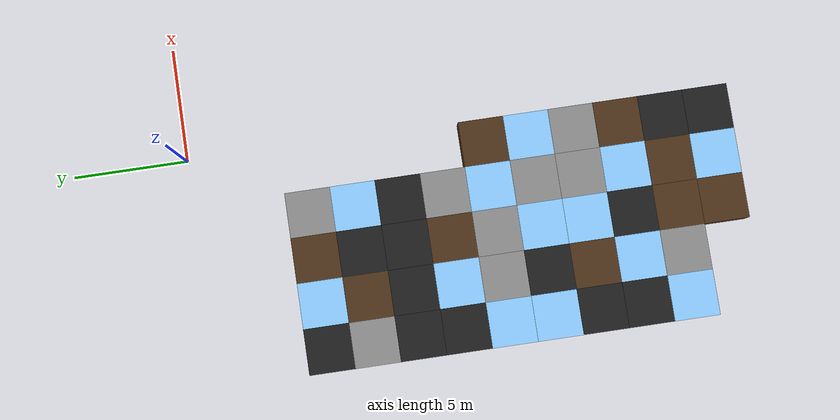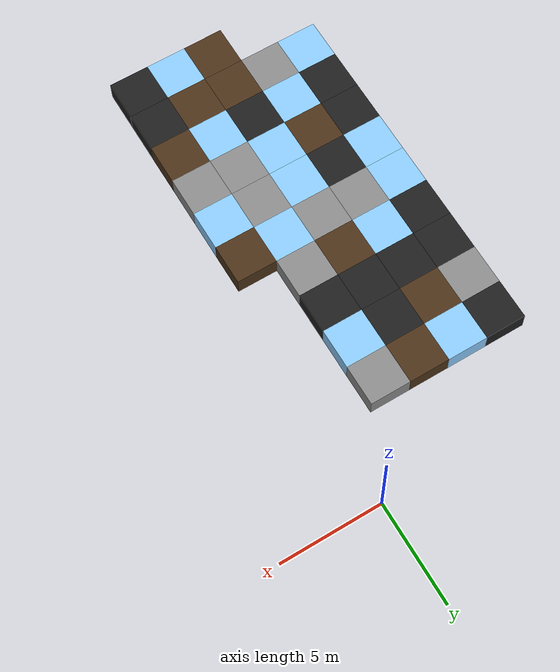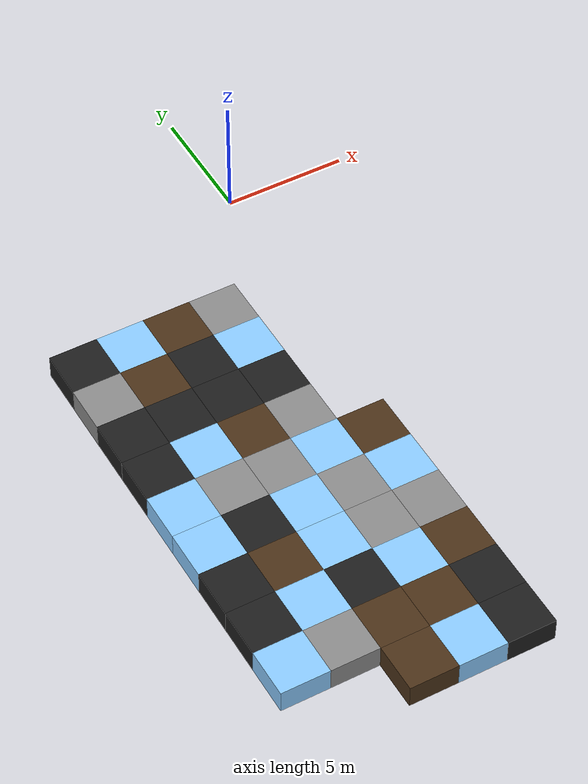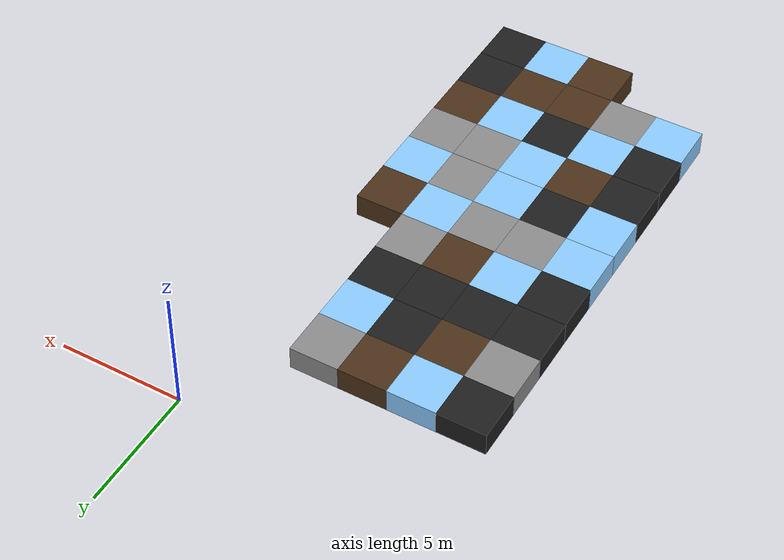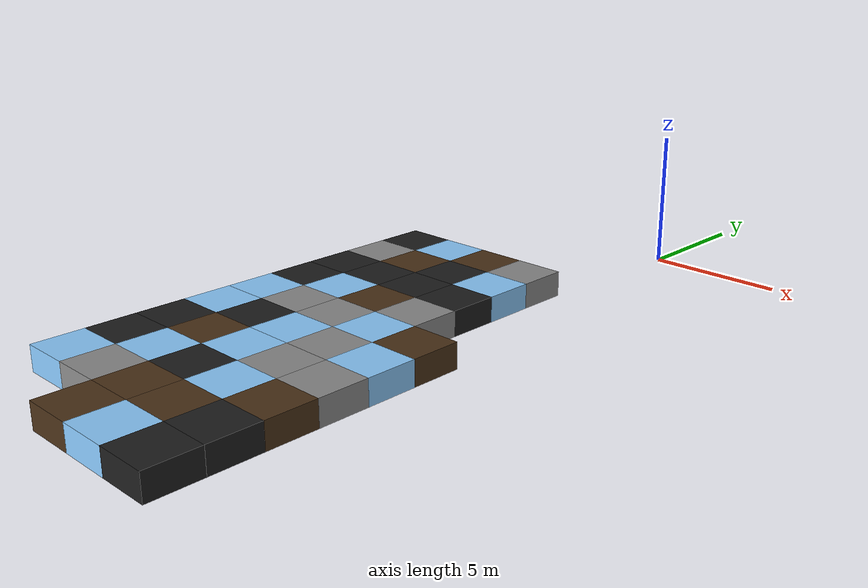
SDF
<sdf version="1.5">
 <world name="squares_example">
  <model name="tile_13_4">
   <static>true</static>
   <pose>-5.000 -23.000 -0.500 0 0 0</pose>
   <link name="link">
    <collision name="col">
     <geometry><box><size>2.0 2.0 1.0</size></box></geometry>
     <surface>
      <friction>
       <ode><mu>0.6</mu><mu2>0.4</mu2><fdir1>1 0 0</fdir1><slip1>0.08</slip1><slip2>0.08</slip2></ode>
       <torsional>
        <coefficient>0.03</coefficient>
        <use_patch_radius>false</use_patch_radius>
        <surface_radius>0.12</surface_radius>
        <ode><slip>0.0</slip></ode>
       </torsional>
      </friction>
      <bounce><restitution_coefficient>0.0</restitution_coefficient><threshold>0.1</threshold></bounce>
      <contact>
       <ode><kp>1000000.0</kp><kd>10000.0</kd><max_vel>0.01</max_vel><min_depth>0.0</min_depth></ode>
      </contact>
     </surface>
    </collision>
    <visual name="visual">
     <geometry><box><size>2.0 2.0 1.0</size></box></geometry>
     <material>
      <diffuse>0.30 0.20 0.10 1</diffuse>
      <ambient>0 0 0 0</ambient>
      <specular>0 0 0 1</specular>
      <emissive>0 0 0 1</emissive>
     </material>
    </visual>
   </link>
  </model>
  <model name="tile_14_4">
   <static>true</static>
   <pose>-3.000 -23.000 -0.500 0 0 0</pose>
   <link name="link">
    <collision name="col">
     <geometry><box><size>2.0 2.0 1.0</size></box></geometry>
     <surface>
      <friction>
       <ode><mu>0.03</mu><mu2>0.02</mu2><fdir1>1 0 0</fdir1><slip1>0.03</slip1><slip2>0.03</slip2></ode>
       <torsional>
        <coefficient>0.005</coefficient>
        <use_patch_radius>false</use_patch_radius>
        <surface_radius>0.12</surface_radius>
        <ode><slip>0.01</slip></ode>
       </torsional>
      </friction>
      <bounce><restitution_coefficient>0.0</restitution_coefficient><threshold>0.1</threshold></bounce>
      <contact>
       <ode><kp>10000000.0</kp><kd>1000.0</kd><max_vel>0.01</max_vel><min_depth>0.0</min_depth></ode>
      </contact>
     </surface>
    </collision>
    <visual name="visual">
     <geometry><box><size>2.0 2.0 1.0</size></box></geometry>
     <material>
      <diffuse>0.55 0.80 1.00 1</diffuse>
      <ambient>0 0 0 0</ambient>
      <specular>0 0 0 1</specular>
      <emissive>0 0 0 1</emissive>
     </material>
    </visual>
   </link>
  </model>
  <model name="tile_15_4">
   <static>true</static>
   <pose>-1.000 -23.000 -0.500 0 0 0</pose>
   <link name="link">
    <collision name="col">
     <geometry><box><size>2.0 2.0 1.0</size></box></geometry>
     <surface>
      <friction>
       <ode><mu>0.4</mu><mu2>0.15</mu2><fdir1>1 0 0</fdir1><slip1>0.0</slip1><slip2>0.0</slip2></ode>
       <torsional>
        <coefficient>0.03</coefficient>
        <use_patch_radius>false</use_patch_radius>
        <surface_radius>0.12</surface_radius>
        <ode><slip>0.0</slip></ode>
       </torsional>
      </friction>
      <bounce><restitution_coefficient>0.0</restitution_coefficient><threshold>0.1</threshold></bounce>
      <contact>
       <ode><kp>1000000000.0</kp><kd>1000000.0</kd><max_vel>0.01</max_vel><min_depth>0.0</min_depth></ode>
      </contact>
     </surface>
    </collision>
    <visual name="visual">
     <geometry><box><size>2.0 2.0 1.0</size></box></geometry>
     <material>
      <diffuse>0.12 0.12 0.12 1</diffuse>
      <ambient>0 0 0 0</ambient>
      <specular>0 0 0 1</specular>
      <emissive>0 0 0 1</emissive>
     </material>
    </visual>
   </link>
  </model>
  <model name="tile_11_5">
   <static>true</static>
   <pose>-9.000 -21.000 -0.500 0 0 0</pose>
   <link name="link">
    <collision name="col">
     <geometry><box><size>2.0 2.0 1.0</size></box></geometry>
     <surface>
      <friction>
       <ode><mu>0.03</mu><mu2>0.02</mu2><fdir1>1 0 0</fdir1><slip1>0.03</slip1><slip2>0.03</slip2></ode>
       <torsional>
        <coefficient>0.005</coefficient>
        <use_patch_radius>false</use_patch_radius>
        <surface_radius>0.12</surface_radius>
        <ode><slip>0.01</slip></ode>
       </torsional>
      </friction>
      <bounce><restitution_coefficient>0.0</restitution_coefficient><threshold>0.1</threshold></bounce>
      <contact>
       <ode><kp>10000000.0</kp><kd>1000.0</kd><max_vel>0.01</max_vel><min_depth>0.0</min_depth></ode>
      </contact>
     </surface>
    </collision>
    <visual name="visual">
     <geometry><box><size>2.0 2.0 1.0</size></box></geometry>
     <material>
      <diffuse>0.55 0.80 1.00 1</diffuse>
      <ambient>0 0 0 0</ambient>
      <specular>0 0 0 1</specular>
      <emissive>0 0 0 1</emissive>
     </material>
    </visual>
   </link>
  </model>
  <model name="tile_12_5">
   <static>true</static>
   <pose>-7.000 -21.000 -0.500 0 0 0</pose>
   <link name="link">
    <collision name="col">
     <geometry><box><size>2.0 2.0 1.0</size></box></geometry>
     <surface>
      <friction>
       <ode><mu>0.8</mu><mu2>0.3</mu2><fdir1>1 0 0</fdir1><slip1>0.0</slip1><slip2>0.0</slip2></ode>
       <torsional>
        <coefficient>0.03</coefficient>
        <use_patch_radius>false</use_patch_radius>
        <surface_radius>0.12</surface_radius>
        <ode><slip>0.0</slip></ode>
       </torsional>
      </friction>
      <bounce><restitution_coefficient>0.0</restitution_coefficient><threshold>0.1</threshold></bounce>
      <contact>
       <ode><kp>10000000000.0</kp><kd>10000000.0</kd><max_vel>0.01</max_vel><min_depth>0.0</min_depth></ode>
      </contact>
     </surface>
    </collision>
    <visual name="visual">
     <geometry><box><size>2.0 2.0 1.0</size></box></geometry>
     <material>
      <diffuse>0.55 0.55 0.55 1</diffuse>
      <ambient>0 0 0 0</ambient>
      <specular>0 0 0 1</specular>
      <emissive>0 0 0 1</emissive>
     </material>
    </visual>
   </link>
  </model>
  <model name="tile_13_5">
   <static>true</static>
   <pose>-5.000 -21.000 -0.500 0 0 0</pose>
   <link name="link">
    <collision name="col">
     <geometry><box><size>2.0 2.0 1.0</size></box></geometry>
     <surface>
      <friction>
       <ode><mu>0.6</mu><mu2>0.4</mu2><fdir1>1 0 0</fdir1><slip1>0.08</slip1><slip2>0.08</slip2></ode>
       <torsional>
        <coefficient>0.03</coefficient>
        <use_patch_radius>false</use_patch_radius>
        <surface_radius>0.12</surface_radius>
        <ode><slip>0.0</slip></ode>
       </torsional>
      </friction>
      <bounce><restitution_coefficient>0.0</restitution_coefficient><threshold>0.1</threshold></bounce>
      <contact>
       <ode><kp>1000000.0</kp><kd>10000.0</kd><max_vel>0.01</max_vel><min_depth>0.0</min_depth></ode>
      </contact>
     </surface>
    </collision>
    <visual name="visual">
     <geometry><box><size>2.0 2.0 1.0</size></box></geometry>
     <material>
      <diffuse>0.30 0.20 0.10 1</diffuse>
      <ambient>0 0 0 0</ambient>
      <specular>0 0 0 1</specular>
      <emissive>0 0 0 1</emissive>
     </material>
    </visual>
   </link>
  </model>
  <model name="tile_14_5">
   <static>true</static>
   <pose>-3.000 -21.000 -0.500 0 0 0</pose>
   <link name="link">
    <collision name="col">
     <geometry><box><size>2.0 2.0 1.0</size></box></geometry>
     <surface>
      <friction>
       <ode><mu>0.6</mu><mu2>0.4</mu2><fdir1>1 0 0</fdir1><slip1>0.08</slip1><slip2>0.08</slip2></ode>
       <torsional>
        <coefficient>0.03</coefficient>
        <use_patch_radius>false</use_patch_radius>
        <surface_radius>0.12</surface_radius>
        <ode><slip>0.0</slip></ode>
       </torsional>
      </friction>
      <bounce><restitution_coefficient>0.0</restitution_coefficient><threshold>0.1</threshold></bounce>
      <contact>
       <ode><kp>1000000.0</kp><kd>10000.0</kd><max_vel>0.01</max_vel><min_depth>0.0</min_depth></ode>
      </contact>
     </surface>
    </collision>
    <visual name="visual">
     <geometry><box><size>2.0 2.0 1.0</size></box></geometry>
     <material>
      <diffuse>0.30 0.20 0.10 1</diffuse>
      <ambient>0 0 0 0</ambient>
      <specular>0 0 0 1</specular>
      <emissive>0 0 0 1</emissive>
     </material>
    </visual>
   </link>
  </model>
  <model name="tile_15_5">
   <static>true</static>
   <pose>-1.000 -21.000 -0.500 0 0 0</pose>
   <link name="link">
    <collision name="col">
     <geometry><box><size>2.0 2.0 1.0</size></box></geometry>
     <surface>
      <friction>
       <ode><mu>0.4</mu><mu2>0.15</mu2><fdir1>1 0 0</fdir1><slip1>0.0</slip1><slip2>0.0</slip2></ode>
       <torsional>
        <coefficient>0.03</coefficient>
        <use_patch_radius>false</use_patch_radius>
        <surface_radius>0.12</surface_radius>
        <ode><slip>0.0</slip></ode>
       </torsional>
      </friction>
      <bounce><restitution_coefficient>0.0</restitution_coefficient><threshold>0.1</threshold></bounce>
      <contact>
       <ode><kp>1000000000.0</kp><kd>1000000.0</kd><max_vel>0.01</max_vel><min_depth>0.0</min_depth></ode>
      </contact>
     </surface>
    </collision>
    <visual name="visual">
     <geometry><box><size>2.0 2.0 1.0</size></box></geometry>
     <material>
      <diffuse>0.12 0.12 0.12 1</diffuse>
      <ambient>0 0 0 0</ambient>
      <specular>0 0 0 1</specular>
      <emissive>0 0 0 1</emissive>
     </material>
    </visual>
   </link>
  </model>
  <model name="tile_11_6">
   <static>true</static>
   <pose>-9.000 -19.000 -0.500 0 0 0</pose>
   <link name="link">
    <collision name="col">
     <geometry><box><size>2.0 2.0 1.0</size></box></geometry>
     <surface>
      <friction>
       <ode><mu>0.4</mu><mu2>0.15</mu2><fdir1>1 0 0</fdir1><slip1>0.0</slip1><slip2>0.0</slip2></ode>
       <torsional>
        <coefficient>0.03</coefficient>
        <use_patch_radius>false</use_patch_radius>
        <surface_radius>0.12</surface_radius>
        <ode><slip>0.0</slip></ode>
       </torsional>
      </friction>
      <bounce><restitution_coefficient>0.0</restitution_coefficient><threshold>0.1</threshold></bounce>
      <contact>
       <ode><kp>1000000000.0</kp><kd>1000000.0</kd><max_vel>0.01</max_vel><min_depth>0.0</min_depth></ode>
      </contact>
     </surface>
    </collision>
    <visual name="visual">
     <geometry><box><size>2.0 2.0 1.0</size></box></geometry>
     <material>
      <diffuse>0.12 0.12 0.12 1</diffuse>
      <ambient>0 0 0 0</ambient>
      <specular>0 0 0 1</specular>
      <emissive>0 0 0 1</emissive>
     </material>
    </visual>
   </link>
  </model>
  <model name="tile_12_6">
   <static>true</static>
   <pose>-7.000 -19.000 -0.500 0 0 0</pose>
   <link name="link">
    <collision name="col">
     <geometry><box><size>2.0 2.0 1.0</size></box></geometry>
     <surface>
      <friction>
       <ode><mu>0.03</mu><mu2>0.02</mu2><fdir1>1 0 0</fdir1><slip1>0.03</slip1><slip2>0.03</slip2></ode>
       <torsional>
        <coefficient>0.005</coefficient>
        <use_patch_radius>false</use_patch_radius>
        <surface_radius>0.12</surface_radius>
        <ode><slip>0.01</slip></ode>
       </torsional>
      </friction>
      <bounce><restitution_coefficient>0.0</restitution_coefficient><threshold>0.1</threshold></bounce>
      <contact>
       <ode><kp>10000000.0</kp><kd>1000.0</kd><max_vel>0.01</max_vel><min_depth>0.0</min_depth></ode>
      </contact>
     </surface>
    </collision>
    <visual name="visual">
     <geometry><box><size>2.0 2.0 1.0</size></box></geometry>
     <material>
      <diffuse>0.55 0.80 1.00 1</diffuse>
      <ambient>0 0 0 0</ambient>
      <specular>0 0 0 1</specular>
      <emissive>0 0 0 1</emissive>
     </material>
    </visual>
   </link>
  </model>
  <model name="tile_13_6">
   <static>true</static>
   <pose>-5.000 -19.000 -0.500 0 0 0</pose>
   <link name="link">
    <collision name="col">
     <geometry><box><size>2.0 2.0 1.0</size></box></geometry>
     <surface>
      <friction>
       <ode><mu>0.4</mu><mu2>0.15</mu2><fdir1>1 0 0</fdir1><slip1>0.0</slip1><slip2>0.0</slip2></ode>
       <torsional>
        <coefficient>0.03</coefficient>
        <use_patch_radius>false</use_patch_radius>
        <surface_radius>0.12</surface_radius>
        <ode><slip>0.0</slip></ode>
       </torsional>
      </friction>
      <bounce><restitution_coefficient>0.0</restitution_coefficient><threshold>0.1</threshold></bounce>
      <contact>
       <ode><kp>1000000000.0</kp><kd>1000000.0</kd><max_vel>0.01</max_vel><min_depth>0.0</min_depth></ode>
      </contact>
     </surface>
    </collision>
    <visual name="visual">
     <geometry><box><size>2.0 2.0 1.0</size></box></geometry>
     <material>
      <diffuse>0.12 0.12 0.12 1</diffuse>
      <ambient>0 0 0 0</ambient>
      <specular>0 0 0 1</specular>
      <emissive>0 0 0 1</emissive>
     </material>
    </visual>
   </link>
  </model>
  <model name="tile_14_6">
   <static>true</static>
   <pose>-3.000 -19.000 -0.500 0 0 0</pose>
   <link name="link">
    <collision name="col">
     <geometry><box><size>2.0 2.0 1.0</size></box></geometry>
     <surface>
      <friction>
       <ode><mu>0.03</mu><mu2>0.02</mu2><fdir1>1 0 0</fdir1><slip1>0.03</slip1><slip2>0.03</slip2></ode>
       <torsional>
        <coefficient>0.005</coefficient>
        <use_patch_radius>false</use_patch_radius>
        <surface_radius>0.12</surface_radius>
        <ode><slip>0.01</slip></ode>
       </torsional>
      </friction>
      <bounce><restitution_coefficient>0.0</restitution_coefficient><threshold>0.1</threshold></bounce>
      <contact>
       <ode><kp>10000000.0</kp><kd>1000.0</kd><max_vel>0.01</max_vel><min_depth>0.0</min_depth></ode>
      </contact>
     </surface>
    </collision>
    <visual name="visual">
     <geometry><box><size>2.0 2.0 1.0</size></box></geometry>
     <material>
      <diffuse>0.55 0.80 1.00 1</diffuse>
      <ambient>0 0 0 0</ambient>
      <specular>0 0 0 1</specular>
      <emissive>0 0 0 1</emissive>
     </material>
    </visual>
   </link>
  </model>
  <model name="tile_15_6">
   <static>true</static>
   <pose>-1.000 -19.000 -0.500 0 0 0</pose>
   <link name="link">
    <collision name="col">
     <geometry><box><size>2.0 2.0 1.0</size></box></geometry>
     <surface>
      <friction>
       <ode><mu>0.6</mu><mu2>0.4</mu2><fdir1>1 0 0</fdir1><slip1>0.08</slip1><slip2>0.08</slip2></ode>
       <torsional>
        <coefficient>0.03</coefficient>
        <use_patch_radius>false</use_patch_radius>
        <surface_radius>0.12</surface_radius>
        <ode><slip>0.0</slip></ode>
       </torsional>
      </friction>
      <bounce><restitution_coefficient>0.0</restitution_coefficient><threshold>0.1</threshold></bounce>
      <contact>
       <ode><kp>1000000.0</kp><kd>10000.0</kd><max_vel>0.01</max_vel><min_depth>0.0</min_depth></ode>
      </contact>
     </surface>
    </collision>
    <visual name="visual">
     <geometry><box><size>2.0 2.0 1.0</size></box></geometry>
     <material>
      <diffuse>0.30 0.20 0.10 1</diffuse>
      <ambient>0 0 0 0</ambient>
      <specular>0 0 0 1</specular>
      <emissive>0 0 0 1</emissive>
     </material>
    </visual>
   </link>
  </model>
  <model name="tile_11_7">
   <static>true</static>
   <pose>-9.000 -17.000 -0.500 0 0 0</pose>
   <link name="link">
    <collision name="col">
     <geometry><box><size>2.0 2.0 1.0</size></box></geometry>
     <surface>
      <friction>
       <ode><mu>0.4</mu><mu2>0.15</mu2><fdir1>1 0 0</fdir1><slip1>0.0</slip1><slip2>0.0</slip2></ode>
       <torsional>
        <coefficient>0.03</coefficient>
        <use_patch_radius>false</use_patch_radius>
        <surface_radius>0.12</surface_radius>
        <ode><slip>0.0</slip></ode>
       </torsional>
      </friction>
      <bounce><restitution_coefficient>0.0</restitution_coefficient><threshold>0.1</threshold></bounce>
      <contact>
       <ode><kp>1000000000.0</kp><kd>1000000.0</kd><max_vel>0.01</max_vel><min_depth>0.0</min_depth></ode>
      </contact>
     </surface>
    </collision>
    <visual name="visual">
     <geometry><box><size>2.0 2.0 1.0</size></box></geometry>
     <material>
      <diffuse>0.12 0.12 0.12 1</diffuse>
      <ambient>0 0 0 0</ambient>
      <specular>0 0 0 1</specular>
      <emissive>0 0 0 1</emissive>
     </material>
    </visual>
   </link>
  </model>
  <model name="tile_12_7">
   <static>true</static>
   <pose>-7.000 -17.000 -0.500 0 0 0</pose>
   <link name="link">
    <collision name="col">
     <geometry><box><size>2.0 2.0 1.0</size></box></geometry>
     <surface>
      <friction>
       <ode><mu>0.6</mu><mu2>0.4</mu2><fdir1>1 0 0</fdir1><slip1>0.08</slip1><slip2>0.08</slip2></ode>
       <torsional>
        <coefficient>0.03</coefficient>
        <use_patch_radius>false</use_patch_radius>
        <surface_radius>0.12</surface_radius>
        <ode><slip>0.0</slip></ode>
       </torsional>
      </friction>
      <bounce><restitution_coefficient>0.0</restitution_coefficient><threshold>0.1</threshold></bounce>
      <contact>
       <ode><kp>1000000.0</kp><kd>10000.0</kd><max_vel>0.01</max_vel><min_depth>0.0</min_depth></ode>
      </contact>
     </surface>
    </collision>
    <visual name="visual">
     <geometry><box><size>2.0 2.0 1.0</size></box></geometry>
     <material>
      <diffuse>0.30 0.20 0.10 1</diffuse>
      <ambient>0 0 0 0</ambient>
      <specular>0 0 0 1</specular>
      <emissive>0 0 0 1</emissive>
     </material>
    </visual>
   </link>
  </model>
  <model name="tile_13_7">
   <static>true</static>
   <pose>-5.000 -17.000 -0.500 0 0 0</pose>
   <link name="link">
    <collision name="col">
     <geometry><box><size>2.0 2.0 1.0</size></box></geometry>
     <surface>
      <friction>
       <ode><mu>0.03</mu><mu2>0.02</mu2><fdir1>1 0 0</fdir1><slip1>0.03</slip1><slip2>0.03</slip2></ode>
       <torsional>
        <coefficient>0.005</coefficient>
        <use_patch_radius>false</use_patch_radius>
        <surface_radius>0.12</surface_radius>
        <ode><slip>0.01</slip></ode>
       </torsional>
      </friction>
      <bounce><restitution_coefficient>0.0</restitution_coefficient><threshold>0.1</threshold></bounce>
      <contact>
       <ode><kp>10000000.0</kp><kd>1000.0</kd><max_vel>0.01</max_vel><min_depth>0.0</min_depth></ode>
      </contact>
     </surface>
    </collision>
    <visual name="visual">
     <geometry><box><size>2.0 2.0 1.0</size></box></geometry>
     <material>
      <diffuse>0.55 0.80 1.00 1</diffuse>
      <ambient>0 0 0 0</ambient>
      <specular>0 0 0 1</specular>
      <emissive>0 0 0 1</emissive>
     </material>
    </visual>
   </link>
  </model>
  <model name="tile_14_7">
   <static>true</static>
   <pose>-3.000 -17.000 -0.500 0 0 0</pose>
   <link name="link">
    <collision name="col">
     <geometry><box><size>2.0 2.0 1.0</size></box></geometry>
     <surface>
      <friction>
       <ode><mu>0.8</mu><mu2>0.3</mu2><fdir1>1 0 0</fdir1><slip1>0.0</slip1><slip2>0.0</slip2></ode>
       <torsional>
        <coefficient>0.03</coefficient>
        <use_patch_radius>false</use_patch_radius>
        <surface_radius>0.12</surface_radius>
        <ode><slip>0.0</slip></ode>
       </torsional>
      </friction>
      <bounce><restitution_coefficient>0.0</restitution_coefficient><threshold>0.1</threshold></bounce>
      <contact>
       <ode><kp>10000000000.0</kp><kd>10000000.0</kd><max_vel>0.01</max_vel><min_depth>0.0</min_depth></ode>
      </contact>
     </surface>
    </collision>
    <visual name="visual">
     <geometry><box><size>2.0 2.0 1.0</size></box></geometry>
     <material>
      <diffuse>0.55 0.55 0.55 1</diffuse>
      <ambient>0 0 0 0</ambient>
      <specular>0 0 0 1</specular>
      <emissive>0 0 0 1</emissive>
     </material>
    </visual>
   </link>
  </model>
  <model name="tile_15_7">
   <static>true</static>
   <pose>-1.000 -17.000 -0.500 0 0 0</pose>
   <link name="link">
    <collision name="col">
     <geometry><box><size>2.0 2.0 1.0</size></box></geometry>
     <surface>
      <friction>
       <ode><mu>0.8</mu><mu2>0.3</mu2><fdir1>1 0 0</fdir1><slip1>0.0</slip1><slip2>0.0</slip2></ode>
       <torsional>
        <coefficient>0.03</coefficient>
        <use_patch_radius>false</use_patch_radius>
        <surface_radius>0.12</surface_radius>
        <ode><slip>0.0</slip></ode>
       </torsional>
      </friction>
      <bounce><restitution_coefficient>0.0</restitution_coefficient><threshold>0.1</threshold></bounce>
      <contact>
       <ode><kp>10000000000.0</kp><kd>10000000.0</kd><max_vel>0.01</max_vel><min_depth>0.0</min_depth></ode>
      </contact>
     </surface>
    </collision>
    <visual name="visual">
     <geometry><box><size>2.0 2.0 1.0</size></box></geometry>
     <material>
      <diffuse>0.55 0.55 0.55 1</diffuse>
      <ambient>0 0 0 0</ambient>
      <specular>0 0 0 1</specular>
      <emissive>0 0 0 1</emissive>
     </material>
    </visual>
   </link>
  </model>
  <model name="tile_11_8">
   <static>true</static>
   <pose>-9.000 -15.000 -0.500 0 0 0</pose>
   <link name="link">
    <collision name="col">
     <geometry><box><size>2.0 2.0 1.0</size></box></geometry>
     <surface>
      <friction>
       <ode><mu>0.03</mu><mu2>0.02</mu2><fdir1>1 0 0</fdir1><slip1>0.03</slip1><slip2>0.03</slip2></ode>
       <torsional>
        <coefficient>0.005</coefficient>
        <use_patch_radius>false</use_patch_radius>
        <surface_radius>0.12</surface_radius>
        <ode><slip>0.01</slip></ode>
       </torsional>
      </friction>
      <bounce><restitution_coefficient>0.0</restitution_coefficient><threshold>0.1</threshold></bounce>
      <contact>
       <ode><kp>10000000.0</kp><kd>1000.0</kd><max_vel>0.01</max_vel><min_depth>0.0</min_depth></ode>
      </contact>
     </surface>
    </collision>
    <visual name="visual">
     <geometry><box><size>2.0 2.0 1.0</size></box></geometry>
     <material>
      <diffuse>0.55 0.80 1.00 1</diffuse>
      <ambient>0 0 0 0</ambient>
      <specular>0 0 0 1</specular>
      <emissive>0 0 0 1</emissive>
     </material>
    </visual>
   </link>
  </model>
  <model name="tile_12_8">
   <static>true</static>
   <pose>-7.000 -15.000 -0.500 0 0 0</pose>
   <link name="link">
    <collision name="col">
     <geometry><box><size>2.0 2.0 1.0</size></box></geometry>
     <surface>
      <friction>
       <ode><mu>0.4</mu><mu2>0.15</mu2><fdir1>1 0 0</fdir1><slip1>0.0</slip1><slip2>0.0</slip2></ode>
       <torsional>
        <coefficient>0.03</coefficient>
        <use_patch_radius>false</use_patch_radius>
        <surface_radius>0.12</surface_radius>
        <ode><slip>0.0</slip></ode>
       </torsional>
      </friction>
      <bounce><restitution_coefficient>0.0</restitution_coefficient><threshold>0.1</threshold></bounce>
      <contact>
       <ode><kp>1000000000.0</kp><kd>1000000.0</kd><max_vel>0.01</max_vel><min_depth>0.0</min_depth></ode>
      </contact>
     </surface>
    </collision>
    <visual name="visual">
     <geometry><box><size>2.0 2.0 1.0</size></box></geometry>
     <material>
      <diffuse>0.12 0.12 0.12 1</diffuse>
      <ambient>0 0 0 0</ambient>
      <specular>0 0 0 1</specular>
      <emissive>0 0 0 1</emissive>
     </material>
    </visual>
   </link>
  </model>
  <model name="tile_13_8">
   <static>true</static>
   <pose>-5.000 -15.000 -0.500 0 0 0</pose>
   <link name="link">
    <collision name="col">
     <geometry><box><size>2.0 2.0 1.0</size></box></geometry>
     <surface>
      <friction>
       <ode><mu>0.03</mu><mu2>0.02</mu2><fdir1>1 0 0</fdir1><slip1>0.03</slip1><slip2>0.03</slip2></ode>
       <torsional>
        <coefficient>0.005</coefficient>
        <use_patch_radius>false</use_patch_radius>
        <surface_radius>0.12</surface_radius>
        <ode><slip>0.01</slip></ode>
       </torsional>
      </friction>
      <bounce><restitution_coefficient>0.0</restitution_coefficient><threshold>0.1</threshold></bounce>
      <contact>
       <ode><kp>10000000.0</kp><kd>1000.0</kd><max_vel>0.01</max_vel><min_depth>0.0</min_depth></ode>
      </contact>
     </surface>
    </collision>
    <visual name="visual">
     <geometry><box><size>2.0 2.0 1.0</size></box></geometry>
     <material>
      <diffuse>0.55 0.80 1.00 1</diffuse>
      <ambient>0 0 0 0</ambient>
      <specular>0 0 0 1</specular>
      <emissive>0 0 0 1</emissive>
     </material>
    </visual>
   </link>
  </model>
  <model name="tile_14_8">
   <static>true</static>
   <pose>-3.000 -15.000 -0.500 0 0 0</pose>
   <link name="link">
    <collision name="col">
     <geometry><box><size>2.0 2.0 1.0</size></box></geometry>
     <surface>
      <friction>
       <ode><mu>0.8</mu><mu2>0.3</mu2><fdir1>1 0 0</fdir1><slip1>0.0</slip1><slip2>0.0</slip2></ode>
       <torsional>
        <coefficient>0.03</coefficient>
        <use_patch_radius>false</use_patch_radius>
        <surface_radius>0.12</surface_radius>
        <ode><slip>0.0</slip></ode>
       </torsional>
      </friction>
      <bounce><restitution_coefficient>0.0</restitution_coefficient><threshold>0.1</threshold></bounce>
      <contact>
       <ode><kp>10000000000.0</kp><kd>10000000.0</kd><max_vel>0.01</max_vel><min_depth>0.0</min_depth></ode>
      </contact>
     </surface>
    </collision>
    <visual name="visual">
     <geometry><box><size>2.0 2.0 1.0</size></box></geometry>
     <material>
      <diffuse>0.55 0.55 0.55 1</diffuse>
      <ambient>0 0 0 0</ambient>
      <specular>0 0 0 1</specular>
      <emissive>0 0 0 1</emissive>
     </material>
    </visual>
   </link>
  </model>
  <model name="tile_15_8">
   <static>true</static>
   <pose>-1.000 -15.000 -0.500 0 0 0</pose>
   <link name="link">
    <collision name="col">
     <geometry><box><size>2.0 2.0 1.0</size></box></geometry>
     <surface>
      <friction>
       <ode><mu>0.03</mu><mu2>0.02</mu2><fdir1>1 0 0</fdir1><slip1>0.03</slip1><slip2>0.03</slip2></ode>
       <torsional>
        <coefficient>0.005</coefficient>
        <use_patch_radius>false</use_patch_radius>
        <surface_radius>0.12</surface_radius>
        <ode><slip>0.01</slip></ode>
       </torsional>
      </friction>
      <bounce><restitution_coefficient>0.0</restitution_coefficient><threshold>0.1</threshold></bounce>
      <contact>
       <ode><kp>10000000.0</kp><kd>1000.0</kd><max_vel>0.01</max_vel><min_depth>0.0</min_depth></ode>
      </contact>
     </surface>
    </collision>
    <visual name="visual">
     <geometry><box><size>2.0 2.0 1.0</size></box></geometry>
     <material>
      <diffuse>0.55 0.80 1.00 1</diffuse>
      <ambient>0 0 0 0</ambient>
      <specular>0 0 0 1</specular>
      <emissive>0 0 0 1</emissive>
     </material>
    </visual>
   </link>
  </model>
  <model name="tile_11_9">
   <static>true</static>
   <pose>-9.000 -13.000 -0.500 0 0 0</pose>
   <link name="link">
    <collision name="col">
     <geometry><box><size>2.0 2.0 1.0</size></box></geometry>
     <surface>
      <friction>
       <ode><mu>0.03</mu><mu2>0.02</mu2><fdir1>1 0 0</fdir1><slip1>0.03</slip1><slip2>0.03</slip2></ode>
       <torsional>
        <coefficient>0.005</coefficient>
        <use_patch_radius>false</use_patch_radius>
        <surface_radius>0.12</surface_radius>
        <ode><slip>0.01</slip></ode>
       </torsional>
      </friction>
      <bounce><restitution_coefficient>0.0</restitution_coefficient><threshold>0.1</threshold></bounce>
      <contact>
       <ode><kp>10000000.0</kp><kd>1000.0</kd><max_vel>0.01</max_vel><min_depth>0.0</min_depth></ode>
      </contact>
     </surface>
    </collision>
    <visual name="visual">
     <geometry><box><size>2.0 2.0 1.0</size></box></geometry>
     <material>
      <diffuse>0.55 0.80 1.00 1</diffuse>
      <ambient>0 0 0 0</ambient>
      <specular>0 0 0 1</specular>
      <emissive>0 0 0 1</emissive>
     </material>
    </visual>
   </link>
  </model>
  <model name="tile_12_9">
   <static>true</static>
   <pose>-7.000 -13.000 -0.500 0 0 0</pose>
   <link name="link">
    <collision name="col">
     <geometry><box><size>2.0 2.0 1.0</size></box></geometry>
     <surface>
      <friction>
       <ode><mu>0.8</mu><mu2>0.3</mu2><fdir1>1 0 0</fdir1><slip1>0.0</slip1><slip2>0.0</slip2></ode>
       <torsional>
        <coefficient>0.03</coefficient>
        <use_patch_radius>false</use_patch_radius>
        <surface_radius>0.12</surface_radius>
        <ode><slip>0.0</slip></ode>
       </torsional>
      </friction>
      <bounce><restitution_coefficient>0.0</restitution_coefficient><threshold>0.1</threshold></bounce>
      <contact>
       <ode><kp>10000000000.0</kp><kd>10000000.0</kd><max_vel>0.01</max_vel><min_depth>0.0</min_depth></ode>
      </contact>
     </surface>
    </collision>
    <visual name="visual">
     <geometry><box><size>2.0 2.0 1.0</size></box></geometry>
     <material>
      <diffuse>0.55 0.55 0.55 1</diffuse>
      <ambient>0 0 0 0</ambient>
      <specular>0 0 0 1</specular>
      <emissive>0 0 0 1</emissive>
     </material>
    </visual>
   </link>
  </model>
  <model name="tile_13_9">
   <static>true</static>
   <pose>-5.000 -13.000 -0.500 0 0 0</pose>
   <link name="link">
    <collision name="col">
     <geometry><box><size>2.0 2.0 1.0</size></box></geometry>
     <surface>
      <friction>
       <ode><mu>0.8</mu><mu2>0.3</mu2><fdir1>1 0 0</fdir1><slip1>0.0</slip1><slip2>0.0</slip2></ode>
       <torsional>
        <coefficient>0.03</coefficient>
        <use_patch_radius>false</use_patch_radius>
        <surface_radius>0.12</surface_radius>
        <ode><slip>0.0</slip></ode>
       </torsional>
      </friction>
      <bounce><restitution_coefficient>0.0</restitution_coefficient><threshold>0.1</threshold></bounce>
      <contact>
       <ode><kp>10000000000.0</kp><kd>10000000.0</kd><max_vel>0.01</max_vel><min_depth>0.0</min_depth></ode>
      </contact>
     </surface>
    </collision>
    <visual name="visual">
     <geometry><box><size>2.0 2.0 1.0</size></box></geometry>
     <material>
      <diffuse>0.55 0.55 0.55 1</diffuse>
      <ambient>0 0 0 0</ambient>
      <specular>0 0 0 1</specular>
      <emissive>0 0 0 1</emissive>
     </material>
    </visual>
   </link>
  </model>
  <model name="tile_14_9">
   <static>true</static>
   <pose>-3.000 -13.000 -0.500 0 0 0</pose>
   <link name="link">
    <collision name="col">
     <geometry><box><size>2.0 2.0 1.0</size></box></geometry>
     <surface>
      <friction>
       <ode><mu>0.03</mu><mu2>0.02</mu2><fdir1>1 0 0</fdir1><slip1>0.03</slip1><slip2>0.03</slip2></ode>
       <torsional>
        <coefficient>0.005</coefficient>
        <use_patch_radius>false</use_patch_radius>
        <surface_radius>0.12</surface_radius>
        <ode><slip>0.01</slip></ode>
       </torsional>
      </friction>
      <bounce><restitution_coefficient>0.0</restitution_coefficient><threshold>0.1</threshold></bounce>
      <contact>
       <ode><kp>10000000.0</kp><kd>1000.0</kd><max_vel>0.01</max_vel><min_depth>0.0</min_depth></ode>
      </contact>
     </surface>
    </collision>
    <visual name="visual">
     <geometry><box><size>2.0 2.0 1.0</size></box></geometry>
     <material>
      <diffuse>0.55 0.80 1.00 1</diffuse>
      <ambient>0 0 0 0</ambient>
      <specular>0 0 0 1</specular>
      <emissive>0 0 0 1</emissive>
     </material>
    </visual>
   </link>
  </model>
  <model name="tile_15_9">
   <static>true</static>
   <pose>-1.000 -13.000 -0.500 0 0 0</pose>
   <link name="link">
    <collision name="col">
     <geometry><box><size>2.0 2.0 1.0</size></box></geometry>
     <surface>
      <friction>
       <ode><mu>0.6</mu><mu2>0.4</mu2><fdir1>1 0 0</fdir1><slip1>0.08</slip1><slip2>0.08</slip2></ode>
       <torsional>
        <coefficient>0.03</coefficient>
        <use_patch_radius>false</use_patch_radius>
        <surface_radius>0.12</surface_radius>
        <ode><slip>0.0</slip></ode>
       </torsional>
      </friction>
      <bounce><restitution_coefficient>0.0</restitution_coefficient><threshold>0.1</threshold></bounce>
      <contact>
       <ode><kp>1000000.0</kp><kd>10000.0</kd><max_vel>0.01</max_vel><min_depth>0.0</min_depth></ode>
      </contact>
     </surface>
    </collision>
    <visual name="visual">
     <geometry><box><size>2.0 2.0 1.0</size></box></geometry>
     <material>
      <diffuse>0.30 0.20 0.10 1</diffuse>
      <ambient>0 0 0 0</ambient>
      <specular>0 0 0 1</specular>
      <emissive>0 0 0 1</emissive>
     </material>
    </visual>
   </link>
  </model>
  <model name="tile_11_10">
   <static>true</static>
   <pose>-9.000 -11.000 -0.500 0 0 0</pose>
   <link name="link">
    <collision name="col">
     <geometry><box><size>2.0 2.0 1.0</size></box></geometry>
     <surface>
      <friction>
       <ode><mu>0.4</mu><mu2>0.15</mu2><fdir1>1 0 0</fdir1><slip1>0.0</slip1><slip2>0.0</slip2></ode>
       <torsional>
        <coefficient>0.03</coefficient>
        <use_patch_radius>false</use_patch_radius>
        <surface_radius>0.12</surface_radius>
        <ode><slip>0.0</slip></ode>
       </torsional>
      </friction>
      <bounce><restitution_coefficient>0.0</restitution_coefficient><threshold>0.1</threshold></bounce>
      <contact>
       <ode><kp>1000000000.0</kp><kd>1000000.0</kd><max_vel>0.01</max_vel><min_depth>0.0</min_depth></ode>
      </contact>
     </surface>
    </collision>
    <visual name="visual">
     <geometry><box><size>2.0 2.0 1.0</size></box></geometry>
     <material>
      <diffuse>0.12 0.12 0.12 1</diffuse>
      <ambient>0 0 0 0</ambient>
      <specular>0 0 0 1</specular>
      <emissive>0 0 0 1</emissive>
     </material>
    </visual>
   </link>
  </model>
  <model name="tile_12_10">
   <static>true</static>
   <pose>-7.000 -11.000 -0.500 0 0 0</pose>
   <link name="link">
    <collision name="col">
     <geometry><box><size>2.0 2.0 1.0</size></box></geometry>
     <surface>
      <friction>
       <ode><mu>0.03</mu><mu2>0.02</mu2><fdir1>1 0 0</fdir1><slip1>0.03</slip1><slip2>0.03</slip2></ode>
       <torsional>
        <coefficient>0.005</coefficient>
        <use_patch_radius>false</use_patch_radius>
        <surface_radius>0.12</surface_radius>
        <ode><slip>0.01</slip></ode>
       </torsional>
      </friction>
      <bounce><restitution_coefficient>0.0</restitution_coefficient><threshold>0.1</threshold></bounce>
      <contact>
       <ode><kp>10000000.0</kp><kd>1000.0</kd><max_vel>0.01</max_vel><min_depth>0.0</min_depth></ode>
      </contact>
     </surface>
    </collision>
    <visual name="visual">
     <geometry><box><size>2.0 2.0 1.0</size></box></geometry>
     <material>
      <diffuse>0.55 0.80 1.00 1</diffuse>
      <ambient>0 0 0 0</ambient>
      <specular>0 0 0 1</specular>
      <emissive>0 0 0 1</emissive>
     </material>
    </visual>
   </link>
  </model>
  <model name="tile_13_10">
   <static>true</static>
   <pose>-5.000 -11.000 -0.500 0 0 0</pose>
   <link name="link">
    <collision name="col">
     <geometry><box><size>2.0 2.0 1.0</size></box></geometry>
     <surface>
      <friction>
       <ode><mu>0.6</mu><mu2>0.4</mu2><fdir1>1 0 0</fdir1><slip1>0.08</slip1><slip2>0.08</slip2></ode>
       <torsional>
        <coefficient>0.03</coefficient>
        <use_patch_radius>false</use_patch_radius>
        <surface_radius>0.12</surface_radius>
        <ode><slip>0.0</slip></ode>
       </torsional>
      </friction>
      <bounce><restitution_coefficient>0.0</restitution_coefficient><threshold>0.1</threshold></bounce>
      <contact>
       <ode><kp>1000000.0</kp><kd>10000.0</kd><max_vel>0.01</max_vel><min_depth>0.0</min_depth></ode>
      </contact>
     </surface>
    </collision>
    <visual name="visual">
     <geometry><box><size>2.0 2.0 1.0</size></box></geometry>
     <material>
      <diffuse>0.30 0.20 0.10 1</diffuse>
      <ambient>0 0 0 0</ambient>
      <specular>0 0 0 1</specular>
      <emissive>0 0 0 1</emissive>
     </material>
    </visual>
   </link>
  </model>
  <model name="tile_14_10">
   <static>true</static>
   <pose>-3.000 -11.000 -0.500 0 0 0</pose>
   <link name="link">
    <collision name="col">
     <geometry><box><size>2.0 2.0 1.0</size></box></geometry>
     <surface>
      <friction>
       <ode><mu>0.8</mu><mu2>0.3</mu2><fdir1>1 0 0</fdir1><slip1>0.0</slip1><slip2>0.0</slip2></ode>
       <torsional>
        <coefficient>0.03</coefficient>
        <use_patch_radius>false</use_patch_radius>
        <surface_radius>0.12</surface_radius>
        <ode><slip>0.0</slip></ode>
       </torsional>
      </friction>
      <bounce><restitution_coefficient>0.0</restitution_coefficient><threshold>0.1</threshold></bounce>
      <contact>
       <ode><kp>10000000000.0</kp><kd>10000000.0</kd><max_vel>0.01</max_vel><min_depth>0.0</min_depth></ode>
      </contact>
     </surface>
    </collision>
    <visual name="visual">
     <geometry><box><size>2.0 2.0 1.0</size></box></geometry>
     <material>
      <diffuse>0.55 0.55 0.55 1</diffuse>
      <ambient>0 0 0 0</ambient>
      <specular>0 0 0 1</specular>
      <emissive>0 0 0 1</emissive>
     </material>
    </visual>
   </link>
  </model>
  <model name="tile_11_11">
   <static>true</static>
   <pose>-9.000 -9.000 -0.500 0 0 0</pose>
   <link name="link">
    <collision name="col">
     <geometry><box><size>2.0 2.0 1.0</size></box></geometry>
     <surface>
      <friction>
       <ode><mu>0.4</mu><mu2>0.15</mu2><fdir1>1 0 0</fdir1><slip1>0.0</slip1><slip2>0.0</slip2></ode>
       <torsional>
        <coefficient>0.03</coefficient>
        <use_patch_radius>false</use_patch_radius>
        <surface_radius>0.12</surface_radius>
        <ode><slip>0.0</slip></ode>
       </torsional>
      </friction>
      <bounce><restitution_coefficient>0.0</restitution_coefficient><threshold>0.1</threshold></bounce>
      <contact>
       <ode><kp>1000000000.0</kp><kd>1000000.0</kd><max_vel>0.01</max_vel><min_depth>0.0</min_depth></ode>
      </contact>
     </surface>
    </collision>
    <visual name="visual">
     <geometry><box><size>2.0 2.0 1.0</size></box></geometry>
     <material>
      <diffuse>0.12 0.12 0.12 1</diffuse>
      <ambient>0 0 0 0</ambient>
      <specular>0 0 0 1</specular>
      <emissive>0 0 0 1</emissive>
     </material>
    </visual>
   </link>
  </model>
  <model name="tile_12_11">
   <static>true</static>
   <pose>-7.000 -9.000 -0.500 0 0 0</pose>
   <link name="link">
    <collision name="col">
     <geometry><box><size>2.0 2.0 1.0</size></box></geometry>
     <surface>
      <friction>
       <ode><mu>0.4</mu><mu2>0.15</mu2><fdir1>1 0 0</fdir1><slip1>0.0</slip1><slip2>0.0</slip2></ode>
       <torsional>
        <coefficient>0.03</coefficient>
        <use_patch_radius>false</use_patch_radius>
        <surface_radius>0.12</surface_radius>
        <ode><slip>0.0</slip></ode>
       </torsional>
      </friction>
      <bounce><restitution_coefficient>0.0</restitution_coefficient><threshold>0.1</threshold></bounce>
      <contact>
       <ode><kp>1000000000.0</kp><kd>1000000.0</kd><max_vel>0.01</max_vel><min_depth>0.0</min_depth></ode>
      </contact>
     </surface>
    </collision>
    <visual name="visual">
     <geometry><box><size>2.0 2.0 1.0</size></box></geometry>
     <material>
      <diffuse>0.12 0.12 0.12 1</diffuse>
      <ambient>0 0 0 0</ambient>
      <specular>0 0 0 1</specular>
      <emissive>0 0 0 1</emissive>
     </material>
    </visual>
   </link>
  </model>
  <model name="tile_13_11">
   <static>true</static>
   <pose>-5.000 -9.000 -0.500 0 0 0</pose>
   <link name="link">
    <collision name="col">
     <geometry><box><size>2.0 2.0 1.0</size></box></geometry>
     <surface>
      <friction>
       <ode><mu>0.4</mu><mu2>0.15</mu2><fdir1>1 0 0</fdir1><slip1>0.0</slip1><slip2>0.0</slip2></ode>
       <torsional>
        <coefficient>0.03</coefficient>
        <use_patch_radius>false</use_patch_radius>
        <surface_radius>0.12</surface_radius>
        <ode><slip>0.0</slip></ode>
       </torsional>
      </friction>
      <bounce><restitution_coefficient>0.0</restitution_coefficient><threshold>0.1</threshold></bounce>
      <contact>
       <ode><kp>1000000000.0</kp><kd>1000000.0</kd><max_vel>0.01</max_vel><min_depth>0.0</min_depth></ode>
      </contact>
     </surface>
    </collision>
    <visual name="visual">
     <geometry><box><size>2.0 2.0 1.0</size></box></geometry>
     <material>
      <diffuse>0.12 0.12 0.12 1</diffuse>
      <ambient>0 0 0 0</ambient>
      <specular>0 0 0 1</specular>
      <emissive>0 0 0 1</emissive>
     </material>
    </visual>
   </link>
  </model>
  <model name="tile_14_11">
   <static>true</static>
   <pose>-3.000 -9.000 -0.500 0 0 0</pose>
   <link name="link">
    <collision name="col">
     <geometry><box><size>2.0 2.0 1.0</size></box></geometry>
     <surface>
      <friction>
       <ode><mu>0.4</mu><mu2>0.15</mu2><fdir1>1 0 0</fdir1><slip1>0.0</slip1><slip2>0.0</slip2></ode>
       <torsional>
        <coefficient>0.03</coefficient>
        <use_patch_radius>false</use_patch_radius>
        <surface_radius>0.12</surface_radius>
        <ode><slip>0.0</slip></ode>
       </torsional>
      </friction>
      <bounce><restitution_coefficient>0.0</restitution_coefficient><threshold>0.1</threshold></bounce>
      <contact>
       <ode><kp>1000000000.0</kp><kd>1000000.0</kd><max_vel>0.01</max_vel><min_depth>0.0</min_depth></ode>
      </contact>
     </surface>
    </collision>
    <visual name="visual">
     <geometry><box><size>2.0 2.0 1.0</size></box></geometry>
     <material>
      <diffuse>0.12 0.12 0.12 1</diffuse>
      <ambient>0 0 0 0</ambient>
      <specular>0 0 0 1</specular>
      <emissive>0 0 0 1</emissive>
     </material>
    </visual>
   </link>
  </model>
  <model name="tile_11_12">
   <static>true</static>
   <pose>-9.000 -7.000 -0.500 0 0 0</pose>
   <link name="link">
    <collision name="col">
     <geometry><box><size>2.0 2.0 1.0</size></box></geometry>
     <surface>
      <friction>
       <ode><mu>0.8</mu><mu2>0.3</mu2><fdir1>1 0 0</fdir1><slip1>0.0</slip1><slip2>0.0</slip2></ode>
       <torsional>
        <coefficient>0.03</coefficient>
        <use_patch_radius>false</use_patch_radius>
        <surface_radius>0.12</surface_radius>
        <ode><slip>0.0</slip></ode>
       </torsional>
      </friction>
      <bounce><restitution_coefficient>0.0</restitution_coefficient><threshold>0.1</threshold></bounce>
      <contact>
       <ode><kp>10000000000.0</kp><kd>10000000.0</kd><max_vel>0.01</max_vel><min_depth>0.0</min_depth></ode>
      </contact>
     </surface>
    </collision>
    <visual name="visual">
     <geometry><box><size>2.0 2.0 1.0</size></box></geometry>
     <material>
      <diffuse>0.55 0.55 0.55 1</diffuse>
      <ambient>0 0 0 0</ambient>
      <specular>0 0 0 1</specular>
      <emissive>0 0 0 1</emissive>
     </material>
    </visual>
   </link>
  </model>
  <model name="tile_12_12">
   <static>true</static>
   <pose>-7.000 -7.000 -0.500 0 0 0</pose>
   <link name="link">
    <collision name="col">
     <geometry><box><size>2.0 2.0 1.0</size></box></geometry>
     <surface>
      <friction>
       <ode><mu>0.6</mu><mu2>0.4</mu2><fdir1>1 0 0</fdir1><slip1>0.08</slip1><slip2>0.08</slip2></ode>
       <torsional>
        <coefficient>0.03</coefficient>
        <use_patch_radius>false</use_patch_radius>
        <surface_radius>0.12</surface_radius>
        <ode><slip>0.0</slip></ode>
       </torsional>
      </friction>
      <bounce><restitution_coefficient>0.0</restitution_coefficient><threshold>0.1</threshold></bounce>
      <contact>
       <ode><kp>1000000.0</kp><kd>10000.0</kd><max_vel>0.01</max_vel><min_depth>0.0</min_depth></ode>
      </contact>
     </surface>
    </collision>
    <visual name="visual">
     <geometry><box><size>2.0 2.0 1.0</size></box></geometry>
     <material>
      <diffuse>0.30 0.20 0.10 1</diffuse>
      <ambient>0 0 0 0</ambient>
      <specular>0 0 0 1</specular>
      <emissive>0 0 0 1</emissive>
     </material>
    </visual>
   </link>
  </model>
  <model name="tile_13_12">
   <static>true</static>
   <pose>-5.000 -7.000 -0.500 0 0 0</pose>
   <link name="link">
    <collision name="col">
     <geometry><box><size>2.0 2.0 1.0</size></box></geometry>
     <surface>
      <friction>
       <ode><mu>0.4</mu><mu2>0.15</mu2><fdir1>1 0 0</fdir1><slip1>0.0</slip1><slip2>0.0</slip2></ode>
       <torsional>
        <coefficient>0.03</coefficient>
        <use_patch_radius>false</use_patch_radius>
        <surface_radius>0.12</surface_radius>
        <ode><slip>0.0</slip></ode>
       </torsional>
      </friction>
      <bounce><restitution_coefficient>0.0</restitution_coefficient><threshold>0.1</threshold></bounce>
      <contact>
       <ode><kp>1000000000.0</kp><kd>1000000.0</kd><max_vel>0.01</max_vel><min_depth>0.0</min_depth></ode>
      </contact>
     </surface>
    </collision>
    <visual name="visual">
     <geometry><box><size>2.0 2.0 1.0</size></box></geometry>
     <material>
      <diffuse>0.12 0.12 0.12 1</diffuse>
      <ambient>0 0 0 0</ambient>
      <specular>0 0 0 1</specular>
      <emissive>0 0 0 1</emissive>
     </material>
    </visual>
   </link>
  </model>
  <model name="tile_14_12">
   <static>true</static>
   <pose>-3.000 -7.000 -0.500 0 0 0</pose>
   <link name="link">
    <collision name="col">
     <geometry><box><size>2.0 2.0 1.0</size></box></geometry>
     <surface>
      <friction>
       <ode><mu>0.03</mu><mu2>0.02</mu2><fdir1>1 0 0</fdir1><slip1>0.03</slip1><slip2>0.03</slip2></ode>
       <torsional>
        <coefficient>0.005</coefficient>
        <use_patch_radius>false</use_patch_radius>
        <surface_radius>0.12</surface_radius>
        <ode><slip>0.01</slip></ode>
       </torsional>
      </friction>
      <bounce><restitution_coefficient>0.0</restitution_coefficient><threshold>0.1</threshold></bounce>
      <contact>
       <ode><kp>10000000.0</kp><kd>1000.0</kd><max_vel>0.01</max_vel><min_depth>0.0</min_depth></ode>
      </contact>
     </surface>
    </collision>
    <visual name="visual">
     <geometry><box><size>2.0 2.0 1.0</size></box></geometry>
     <material>
      <diffuse>0.55 0.80 1.00 1</diffuse>
      <ambient>0 0 0 0</ambient>
      <specular>0 0 0 1</specular>
      <emissive>0 0 0 1</emissive>
     </material>
    </visual>
   </link>
  </model>
  <model name="tile_11_13">
   <static>true</static>
   <pose>-9.000 -5.000 -0.500 0 0 0</pose>
   <link name="link">
    <collision name="col">
     <geometry><box><size>2.0 2.0 1.0</size></box></geometry>
     <surface>
      <friction>
       <ode><mu>0.4</mu><mu2>0.15</mu2><fdir1>1 0 0</fdir1><slip1>0.0</slip1><slip2>0.0</slip2></ode>
       <torsional>
        <coefficient>0.03</coefficient>
        <use_patch_radius>false</use_patch_radius>
        <surface_radius>0.12</surface_radius>
        <ode><slip>0.0</slip></ode>
       </torsional>
      </friction>
      <bounce><restitution_coefficient>0.0</restitution_coefficient><threshold>0.1</threshold></bounce>
      <contact>
       <ode><kp>1000000000.0</kp><kd>1000000.0</kd><max_vel>0.01</max_vel><min_depth>0.0</min_depth></ode>
      </contact>
     </surface>
    </collision>
    <visual name="visual">
     <geometry><box><size>2.0 2.0 1.0</size></box></geometry>
     <material>
      <diffuse>0.12 0.12 0.12 1</diffuse>
      <ambient>0 0 0 0</ambient>
      <specular>0 0 0 1</specular>
      <emissive>0 0 0 1</emissive>
     </material>
    </visual>
   </link>
  </model>
  <model name="tile_12_13">
   <static>true</static>
   <pose>-7.000 -5.000 -0.500 0 0 0</pose>
   <link name="link">
    <collision name="col">
     <geometry><box><size>2.0 2.0 1.0</size></box></geometry>
     <surface>
      <friction>
       <ode><mu>0.03</mu><mu2>0.02</mu2><fdir1>1 0 0</fdir1><slip1>0.03</slip1><slip2>0.03</slip2></ode>
       <torsional>
        <coefficient>0.005</coefficient>
        <use_patch_radius>false</use_patch_radius>
        <surface_radius>0.12</surface_radius>
        <ode><slip>0.01</slip></ode>
       </torsional>
      </friction>
      <bounce><restitution_coefficient>0.0</restitution_coefficient><threshold>0.1</threshold></bounce>
      <contact>
       <ode><kp>10000000.0</kp><kd>1000.0</kd><max_vel>0.01</max_vel><min_depth>0.0</min_depth></ode>
      </contact>
     </surface>
    </collision>
    <visual name="visual">
     <geometry><box><size>2.0 2.0 1.0</size></box></geometry>
     <material>
      <diffuse>0.55 0.80 1.00 1</diffuse>
      <ambient>0 0 0 0</ambient>
      <specular>0 0 0 1</specular>
      <emissive>0 0 0 1</emissive>
     </material>
    </visual>
   </link>
  </model>
  <model name="tile_13_13">
   <static>true</static>
   <pose>-5.000 -5.000 -0.500 0 0 0</pose>
   <link name="link">
    <collision name="col">
     <geometry><box><size>2.0 2.0 1.0</size></box></geometry>
     <surface>
      <friction>
       <ode><mu>0.6</mu><mu2>0.4</mu2><fdir1>1 0 0</fdir1><slip1>0.08</slip1><slip2>0.08</slip2></ode>
       <torsional>
        <coefficient>0.03</coefficient>
        <use_patch_radius>false</use_patch_radius>
        <surface_radius>0.12</surface_radius>
        <ode><slip>0.0</slip></ode>
       </torsional>
      </friction>
      <bounce><restitution_coefficient>0.0</restitution_coefficient><threshold>0.1</threshold></bounce>
      <contact>
       <ode><kp>1000000.0</kp><kd>10000.0</kd><max_vel>0.01</max_vel><min_depth>0.0</min_depth></ode>
      </contact>
     </surface>
    </collision>
    <visual name="visual">
     <geometry><box><size>2.0 2.0 1.0</size></box></geometry>
     <material>
      <diffuse>0.30 0.20 0.10 1</diffuse>
      <ambient>0 0 0 0</ambient>
      <specular>0 0 0 1</specular>
      <emissive>0 0 0 1</emissive>
     </material>
    </visual>
   </link>
  </model>
  <model name="tile_14_13">
   <static>true</static>
   <pose>-3.000 -5.000 -0.500 0 0 0</pose>
   <link name="link">
    <collision name="col">
     <geometry><box><size>2.0 2.0 1.0</size></box></geometry>
     <surface>
      <friction>
       <ode><mu>0.8</mu><mu2>0.3</mu2><fdir1>1 0 0</fdir1><slip1>0.0</slip1><slip2>0.0</slip2></ode>
       <torsional>
        <coefficient>0.03</coefficient>
        <use_patch_radius>false</use_patch_radius>
        <surface_radius>0.12</surface_radius>
        <ode><slip>0.0</slip></ode>
       </torsional>
      </friction>
      <bounce><restitution_coefficient>0.0</restitution_coefficient><threshold>0.1</threshold></bounce>
      <contact>
       <ode><kp>10000000000.0</kp><kd>10000000.0</kd><max_vel>0.01</max_vel><min_depth>0.0</min_depth></ode>
      </contact>
     </surface>
    </collision>
    <visual name="visual">
     <geometry><box><size>2.0 2.0 1.0</size></box></geometry>
     <material>
      <diffuse>0.55 0.55 0.55 1</diffuse>
      <ambient>0 0 0 0</ambient>
      <specular>0 0 0 1</specular>
      <emissive>0 0 0 1</emissive>
     </material>
    </visual>
   </link>
  </model>
 </world>
</sdf>
